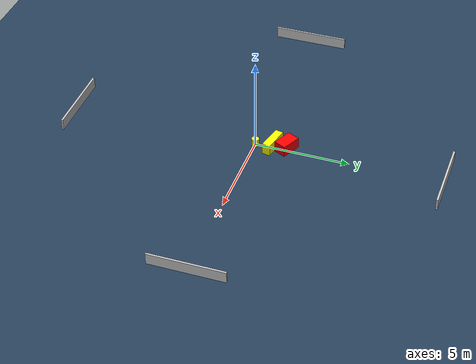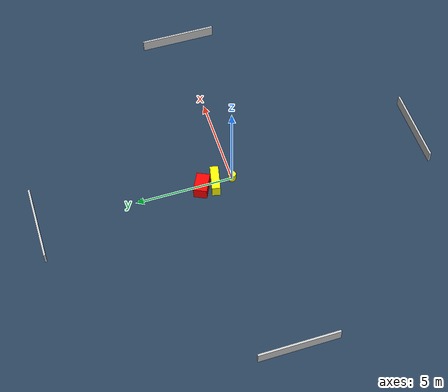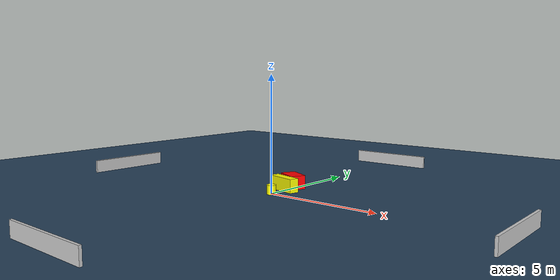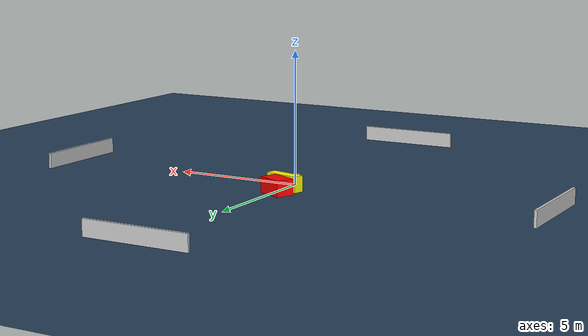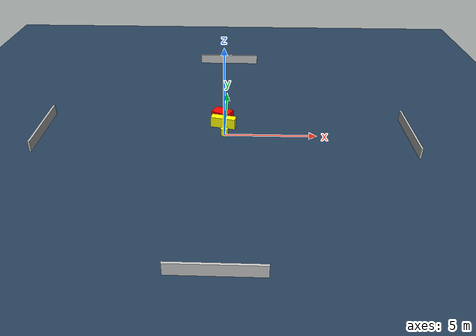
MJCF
<?xml version="1.0" ?>
<mujoco model="generated_environment">
  <option timestep="0.01" integrator="RK4" cone="elliptic"/>
  <default>
    <geom density="1"/>
  </default>
  <asset>
    <texture builtin="gradient" height="3072" name="skybox" rgb1="0.3 0.5 0.7" rgb2="0 0 0" type="skybox" width="512"/>
    <texture builtin="checker" height="300" name="groundplane" rgb1="0.2 0.3 0.4" rgb2="0.1 0.2 0.3" type="2d" width="300"/>
    <material name="groundplane" reflectance="0.2" texrepeat="5 5" texture="groundplane"/>
  </asset>
  <worldbody>
    <light dir="0 0 -1" directional="true" pos="0 0 1.5"/>
    <geom condim="3" friction="0.5 0.005 0.001" material="groundplane" name="floor" pos="0 0 0" size="0 0 0.05" type="plane"/>
    <body name="walls">
      <geom name="wall_1" condim="4" pos="-10.0 0.0 0.3" rgba="0.800000011920929 0.800000011920929 0.800000011920929 1.0" size="0.05 2.0 0.3" type="box"/>
      <geom name="wall_2" condim="4" pos="10.0 0.0 0.3" rgba="0.800000011920929 0.800000011920929 0.800000011920929 1.0" size="0.05 2.0 0.3" type="box"/>
      <geom name="wall_3" condim="4" pos="0.0 -10.0 0.3" rgba="0.800000011920929 0.800000011920929 0.800000011920929 1.0" size="2.0 0.05 0.3" type="box"/>
      <geom name="wall_4" condim="4" pos="0.0 10.0 0.3" rgba="0.800000011920929 0.800000011920929 0.800000011920929 1.0" size="2.0 0.05 0.3" type="box"/>
    </body>
    <body name="robot">
      <joint name="joint_x" type="slide" pos="0 0 0" axis="1 0 0"/>
      <joint name="joint_y" type="slide" pos="0 0 0" axis="0 1 0"/>
      <geom name="robot" type="cylinder" pos="0.0 0.0 0.2" size="0.2 0.2 0.0" mass="5.0" friction="1.0 0.005 0.0001" condim="4" rgba="1.0 1.0 0.0 1.0"/>
    </body>
    <body name="obstacle_1_movable">
      <geom name="obstacle_1_movable" condim="4" pos="-0.0786165084871839 0.9232570391462653 0.3" euler="0 0 77.58945142427862" friction="0.0 0.005 0.001" rgba="1.0 1.0 0.0 1.0" size="0.21379618746678916 0.6860614645690577 0.3" type="box" mass="0.1"/>
      <joint type="free"/>
    </body>
    <body name="obstacle_2_static">
      <geom name="obstacle_2_static" condim="4" pos="-0.1633109982235008 1.6458820731889896 0.3" euler="0 0 64.10350869977616" friction="0.0 0.005 0.001" rgba="1.0 0.0 0.0 1.0" size="0.34193044076577767 0.5328888411124217 0.3" type="box"/>
    </body>
  </worldbody>
  <actuator>
    <motor name="actuator_x" joint="joint_x" gear="1" ctrlrange="-1 1"/>
    <motor name="actuator_y" joint="joint_y" gear="1" ctrlrange="-1 1"/>
  </actuator>
</mujoco>
